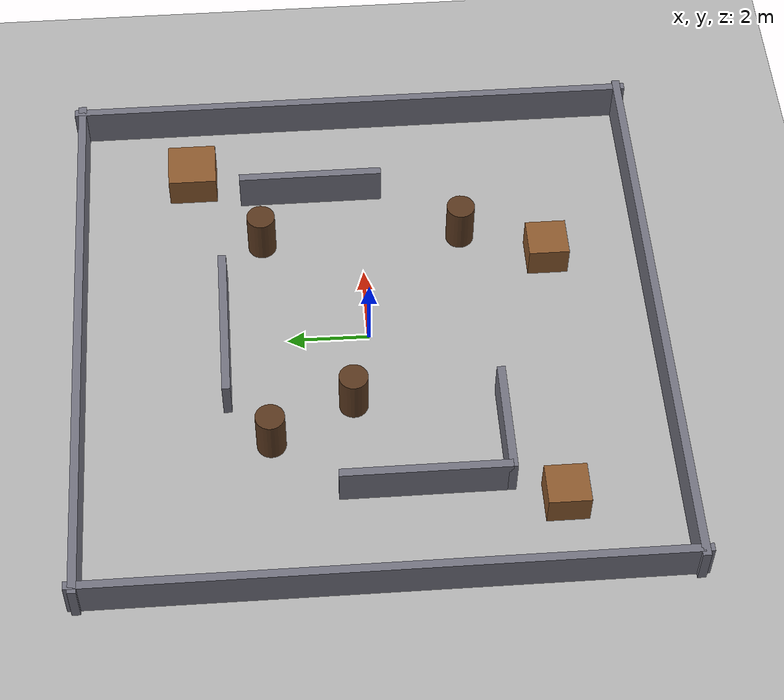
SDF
<?xml version="1.0" ?>
<sdf version="1.6">
  <world name="warehouse">
    <physics name="1ms" type="ignored">
      <max_step_size>0.001</max_step_size>
      <real_time_factor>1.0</real_time_factor>
    </physics>

    <plugin filename="gz-sim-physics-system" name="gz::sim::systems::Physics"/>
    <plugin filename="gz-sim-user-commands-system" name="gz::sim::systems::UserCommands"/>
    <plugin filename="gz-sim-scene-broadcaster-system" name="gz::sim::systems::SceneBroadcaster"/>
    <plugin filename="gz-sim-contact-system" name="gz::sim::systems::Contact"/>
    <plugin filename="gz-sim-imu-system" name="gz::sim::systems::Imu"/>
    <plugin filename="gz-sim-sensors-system" name="gz::sim::systems::Sensors">
      <render_engine>ogre2</render_engine>
    </plugin>

    <light type="directional" name="sun">
      <cast_shadows>true</cast_shadows>
      <pose>0 0 10 0 0 0</pose>
      <diffuse>0.8 0.8 0.8 1</diffuse>
      <specular>0.2 0.2 0.2 1</specular>
      <attenuation><range>1000</range><constant>0.9</constant><linear>0.01</linear><quadratic>0.001</quadratic></attenuation>
      <direction>-0.5 0.1 -0.9</direction>
    </light>

    <model name="ground_plane">
      <static>true</static>
      <link name="link">
        <collision name="collision"><geometry><plane><normal>0 0 1</normal><size>100 100</size></plane></geometry></collision>
        <visual name="visual">
          <geometry><plane><normal>0 0 1</normal><size>100 100</size></plane></geometry>
          <material><ambient>0.7 0.7 0.7 1</ambient><diffuse>0.7 0.7 0.7 1</diffuse><specular>0.3 0.3 0.3 1</specular></material>
        </visual>
      </link>
    </model>

    <model name="wall_north">
      <static>true</static>
      <pose>0 7 0.5 0 0 0</pose>
      <link name="link">
        <collision name="collision"><geometry><box><size>14.4 0.2 1.0</size></box></geometry></collision>
        <visual name="visual">
          <geometry><box><size>14.4 0.2 1.0</size></box></geometry>
          <material><ambient>0.45 0.45 0.5 1</ambient><diffuse>0.45 0.45 0.5 1</diffuse></material>
        </visual>
      </link>
    </model>
    <model name="wall_south">
      <static>true</static>
      <pose>0 -7 0.5 0 0 0</pose>
      <link name="link">
        <collision name="collision"><geometry><box><size>14.4 0.2 1.0</size></box></geometry></collision>
        <visual name="visual">
          <geometry><box><size>14.4 0.2 1.0</size></box></geometry>
          <material><ambient>0.45 0.45 0.5 1</ambient><diffuse>0.45 0.45 0.5 1</diffuse></material>
        </visual>
      </link>
    </model>
    <model name="wall_east">
      <static>true</static>
      <pose>7 0 0.5 0 0 0</pose>
      <link name="link">
        <collision name="collision"><geometry><box><size>0.2 14.4 1.0</size></box></geometry></collision>
        <visual name="visual">
          <geometry><box><size>0.2 14.4 1.0</size></box></geometry>
          <material><ambient>0.45 0.45 0.5 1</ambient><diffuse>0.45 0.45 0.5 1</diffuse></material>
        </visual>
      </link>
    </model>
    <model name="wall_west">
      <static>true</static>
      <pose>-7 0 0.5 0 0 0</pose>
      <link name="link">
        <collision name="collision"><geometry><box><size>0.2 14.4 1.0</size></box></geometry></collision>
        <visual name="visual">
          <geometry><box><size>0.2 14.4 1.0</size></box></geometry>
          <material><ambient>0.45 0.45 0.5 1</ambient><diffuse>0.45 0.45 0.5 1</diffuse></material>
        </visual>
      </link>
    </model>
    <model name="div_center">
      <static>true</static>
      <pose>0 3.5 0.5 0 0 0</pose>
      <link name="link">
        <collision name="collision"><geometry><box><size>4.0 0.2 1.0</size></box></geometry></collision>
        <visual name="visual">
          <geometry><box><size>4.0 0.2 1.0</size></box></geometry>
          <material><ambient>0.45 0.45 0.5 1</ambient><diffuse>0.45 0.45 0.5 1</diffuse></material>
        </visual>
      </link>
    </model>
    <model name="div_lvert">
      <static>true</static>
      <pose>-4.5 -1.0 0.5 0 0 0</pose>
      <link name="link">
        <collision name="collision"><geometry><box><size>0.2 4.0 1.0</size></box></geometry></collision>
        <visual name="visual">
          <geometry><box><size>0.2 4.0 1.0</size></box></geometry>
          <material><ambient>0.45 0.45 0.5 1</ambient><diffuse>0.45 0.45 0.5 1</diffuse></material>
        </visual>
      </link>
    </model>
    <model name="div_lhorz">
      <static>true</static>
      <pose>-3.2 -3.0 0.5 0 0 0</pose>
      <link name="link">
        <collision name="collision"><geometry><box><size>2.8 0.2 1.0</size></box></geometry></collision>
        <visual name="visual">
          <geometry><box><size>2.8 0.2 1.0</size></box></geometry>
          <material><ambient>0.45 0.45 0.5 1</ambient><diffuse>0.45 0.45 0.5 1</diffuse></material>
        </visual>
      </link>
    </model>
    <model name="div_right">
      <static>true</static>
      <pose>4.5 1.2 0.5 0 0 0</pose>
      <link name="link">
        <collision name="collision"><geometry><box><size>0.2 3.6 1.0</size></box></geometry></collision>
        <visual name="visual">
          <geometry><box><size>0.2 3.6 1.0</size></box></geometry>
          <material><ambient>0.45 0.45 0.5 1</ambient><diffuse>0.45 0.45 0.5 1</diffuse></material>
        </visual>
      </link>
    </model>
    <model name="pillar_1">
      <static>true</static>
      <pose>3.0 2.5 0.6 0 0 0</pose>
      <link name="link">
        <collision name="collision"><geometry><cylinder><radius>0.35</radius><length>1.2</length></cylinder></geometry></collision>
        <visual name="visual">
          <geometry><cylinder><radius>0.35</radius><length>1.2</length></cylinder></geometry>
          <material><ambient>0.35 0.22 0.12 1</ambient><diffuse>0.35 0.22 0.12 1</diffuse></material>
        </visual>
      </link>
    </model>
    <model name="pillar_2">
      <static>true</static>
      <pose>-3.0 2.5 0.6 0 0 0</pose>
      <link name="link">
        <collision name="collision"><geometry><cylinder><radius>0.35</radius><length>1.2</length></cylinder></geometry></collision>
        <visual name="visual">
          <geometry><cylinder><radius>0.35</radius><length>1.2</length></cylinder></geometry>
          <material><ambient>0.35 0.22 0.12 1</ambient><diffuse>0.35 0.22 0.12 1</diffuse></material>
        </visual>
      </link>
    </model>
    <model name="pillar_3">
      <static>true</static>
      <pose>3.0 -2.5 0.6 0 0 0</pose>
      <link name="link">
        <collision name="collision"><geometry><cylinder><radius>0.35</radius><length>1.2</length></cylinder></geometry></collision>
        <visual name="visual">
          <geometry><cylinder><radius>0.35</radius><length>1.2</length></cylinder></geometry>
          <material><ambient>0.35 0.22 0.12 1</ambient><diffuse>0.35 0.22 0.12 1</diffuse></material>
        </visual>
      </link>
    </model>
    <model name="pillar_4">
      <static>true</static>
      <pose>-2.0 0.5 0.6 0 0 0</pose>
      <link name="link">
        <collision name="collision"><geometry><cylinder><radius>0.35</radius><length>1.2</length></cylinder></geometry></collision>
        <visual name="visual">
          <geometry><cylinder><radius>0.35</radius><length>1.2</length></cylinder></geometry>
          <material><ambient>0.35 0.22 0.12 1</ambient><diffuse>0.35 0.22 0.12 1</diffuse></material>
        </visual>
      </link>
    </model>
    <model name="crate_1">
      <static>true</static>
      <pose>5.2 4.2 0.4 0 0 0</pose>
      <link name="link">
        <collision name="collision"><geometry><box><size>1.2 1.2 0.8</size></box></geometry></collision>
        <visual name="visual">
          <geometry><box><size>1.2 1.2 0.8</size></box></geometry>
          <material><ambient>0.55 0.35 0.18 1</ambient><diffuse>0.55 0.35 0.18 1</diffuse></material>
        </visual>
      </link>
    </model>
    <model name="crate_2">
      <static>true</static>
      <pose>-5.0 -4.2 0.4 0 0 0</pose>
      <link name="link">
        <collision name="collision"><geometry><box><size>1.0 1.0 0.8</size></box></geometry></collision>
        <visual name="visual">
          <geometry><box><size>1.0 1.0 0.8</size></box></geometry>
          <material><ambient>0.55 0.35 0.18 1</ambient><diffuse>0.55 0.35 0.18 1</diffuse></material>
        </visual>
      </link>
    </model>
    <model name="crate_3">
      <static>true</static>
      <pose>2.2 -4.6 0.4 0 0 0</pose>
      <link name="link">
        <collision name="collision"><geometry><box><size>1.0 1.0 0.8</size></box></geometry></collision>
        <visual name="visual">
          <geometry><box><size>1.0 1.0 0.8</size></box></geometry>
          <material><ambient>0.55 0.35 0.18 1</ambient><diffuse>0.55 0.35 0.18 1</diffuse></material>
        </visual>
      </link>
    </model>
  </world>
</sdf>
